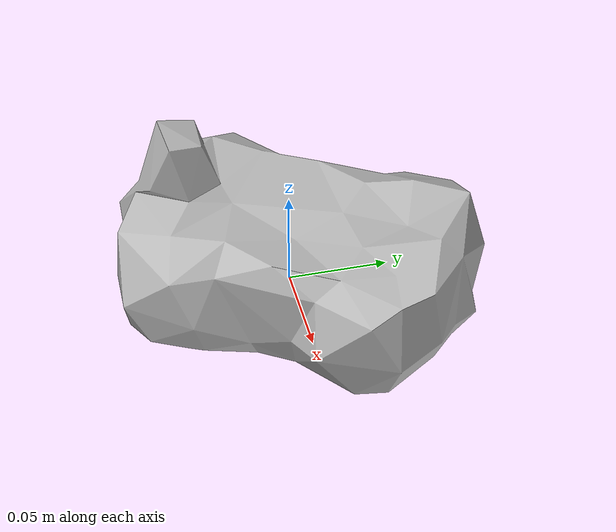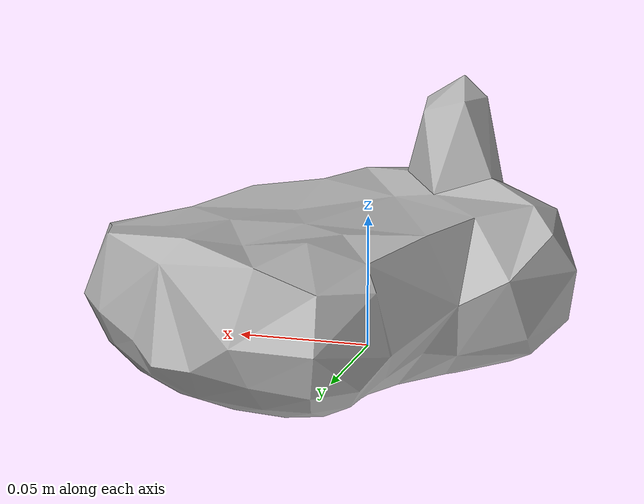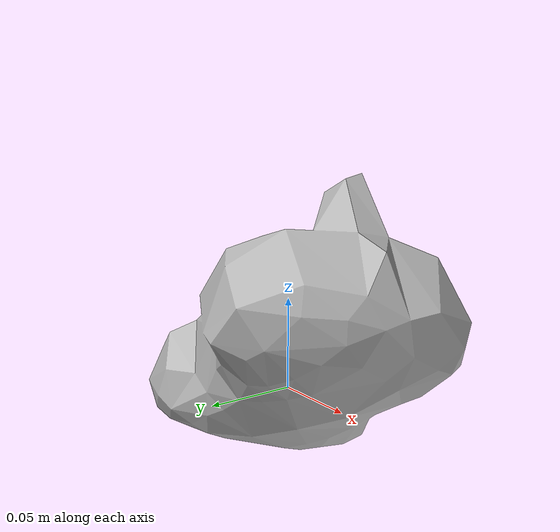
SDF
<?xml version='1.0'?>
<sdf version="1.4">
  <model name="073-m_lego_duplo">
    <static>false</static>
    <link name="link">
      <inertial>
        <pose>0.01168931710191221 -0.0004233559978562775 0.027829752810118766 -3.0914981955165968 -1.4746434814191367 0.9698743450405286</pose>
        <mass>0.13754622772567146</mass>
        <inertia>
          <ixx>0.0004078101309278279</ixx>
          <ixy>1.4866332314721815e-20</ixy>
          <ixz>-2.96171020954758e-20</ixz>
          <iyy>0.00033279653622443975</iyy>
          <iyz>4.571217645686403e-20</iyz>
          <izz>0.0002050264839984497</izz>
        </inertia>
      </inertial>
      <collision name="collision">
        <geometry>
          <mesh>
            <!-- Use a downsampled mesh for collisions -->
            <uri>model:///073-m_lego_duplo/073-m_lego_duplo_250_collision.stl</uri>
	        </mesh>
        </geometry>
        <surface>
      </surface>
      </collision>
      <visual name="visual">
        <geometry>
          <mesh>
            <uri>model:///073-m_lego_duplo/textured.obj</uri>
	        </mesh>
        </geometry>
        <material>
          <script>
            <uri>model:///073-m_lego_duplo/073-m_lego_duplo.material</uri>
            <name>073-m_lego_duplo</name>
          </script>
        </material>
      </visual>
    </link>
  </model>
</sdf>
